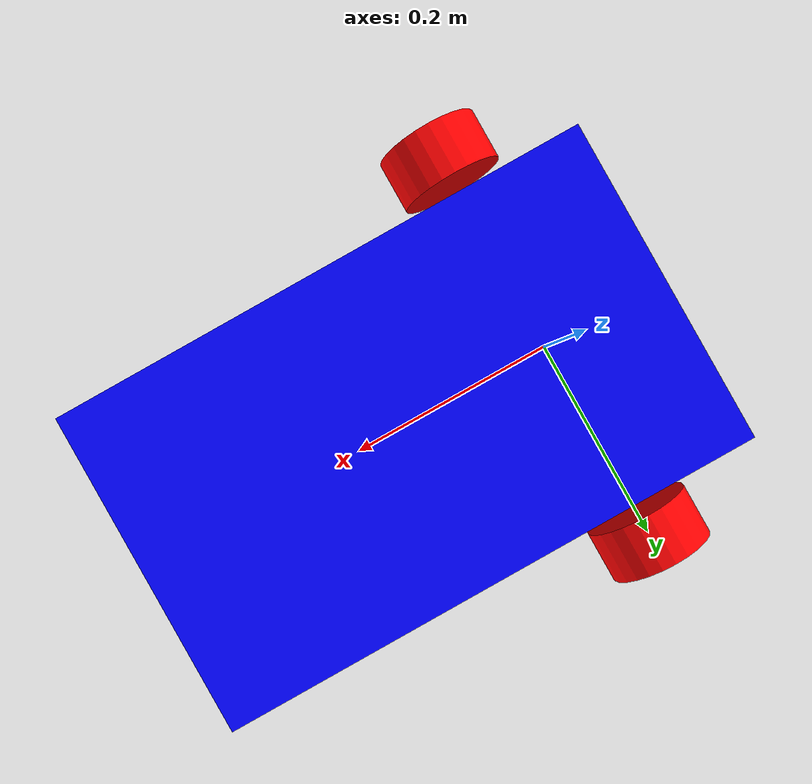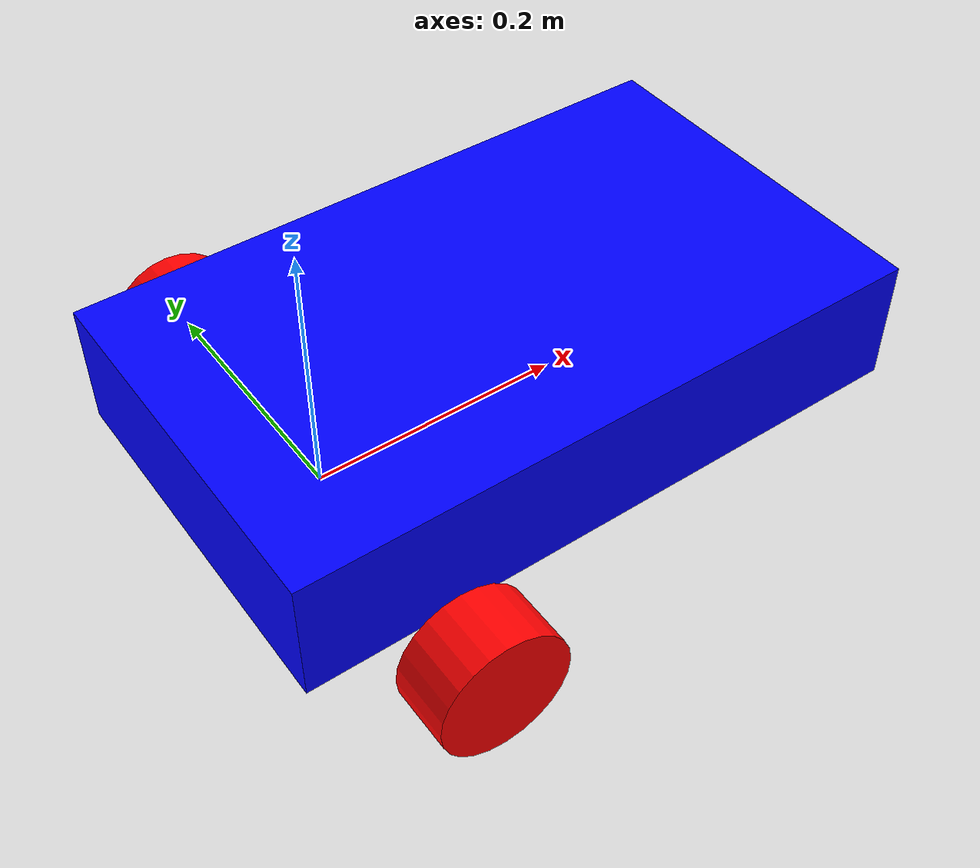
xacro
<?xml version = "1.0"?>

<robot xmlns:xacro="http://www.ros.org/wiki/xacro">
<gazebo>
  <plugin
    filename="libgz-sim-diff-drive-system.so"
    name="gz::sim::systems::DiffDrive">

        <!--Wheel information -->
        <left_joint>left_wheel_joint</left_joint>
        <right_joint>right_wheel_joint</right_joint>

        <wheel_separation>0.35</wheel_separation>
        <wheel_radius>0.05</wheel_radius>

        <!-- limits -->
        <max_wheel_torque>200</max_wheel_torque>
        <max_wheel_acceleration>10.0</max_wheel_acceleration>

        <frame_id>odom</frame_id>
        <child_frame_id>base_link</child_frame_id>
        <tf_topic>/tf</tf_topic>
        <odom_topic>/odom</odom_topic>

        <!-- outputs-->
        <robot_base_frame>base_link</robot_base_frame>

        <!-- topics-->
        <topic>cmd_vel</topic>
        <publish_odom>true</publish_odom>
        <publish_odom_tf>true</publish_odom_tf>
        <publish_wheel_tf>true</publish_wheel_tf>
  </plugin>
  <plugin
    filename="libgz-sim-joint-state-publisher-system.so"
    name="gz::sim::systems::JointStatePublisher">

    <topic>/joint_states</topic>

  </plugin>

</gazebo>
<gazebo reference="caster_wheel">
  <mu1 value="0.1"/>
  <mu2 value="0.1"/>
</gazebo>

<xacro:include filename="inertial_macros.xacro"/>

<!-- Base link -->
<link name = "base_link">

</link>

<joint name="base_footprint_joint" type="fixed">
  <parent link="base_link"/>
  <child link="base_footprint"/>
  <origin xyz="0 0 0" rpy="0 0 0"/>
</joint>

<link name="base_footprint">
</link>

<!--Chassis-->
<joint name = "chassis_joint" type = "fixed">
    <parent link = "base_link"/>
    <child link= "chassis"/>
    <origin xyz = "-0.1 0 0" rpy = "0 0 0"/>
</joint>

<link name = "chassis">
    <visual>
        <origin xyz = "0.25 0 0.05" rpy = "0 0 0"/>
        <geometry>
            <box size = "0.5 0.3 0.1"/>
        </geometry>
        <material name = "blue">
            <color rgba = "0 0 1 1"/>
        </material>
    </visual>
    <collision>
        <origin xyz = "0.25 0 0.05" rpy = "0 0 0"/>
        <geometry>
            <box size = "0.5 0.3 0.1"/>
        </geometry>
    </collision>
    <xacro:inertial_box mass="0.5" x="0.5" y="0.3" z="0.1">
        <origin xyz = "0.25 0 0.05"/>
    </xacro:inertial_box>

</link>

<!-- Left wheel -->
<joint name = "left_wheel_joint" type = "continuous">
    <parent link = "base_link"/>
    <child link = "left_wheel"/>
    <origin xyz = "0 0.2 0" rpy = "0 0 0"/>
    <axis xyz = "0 1 0"/>
</joint>

<link name = "left_wheel">
    <visual>
        <origin xyz = "0 0 0" rpy = "-1.5708 0 0"/>
        <geometry>
            <cylinder radius = "0.05" length = "0.05"/>
        </geometry>
        <material name = "red">
            <color rgba = "1 0 0 1"/>
        </material>
    </visual>
    <collision>
        <origin xyz = "0 0 0" rpy = "-1.5708 0 0"/>
        <geometry>
            <cylinder radius = "0.05" length = "0.05"/>
        </geometry>
    </collision>
    <xacro:inertial_cylinder mass = "0.1" length= "0.05" radius="0.05">
        <origin xyz = "0 0 0" rpy = "-1.5708 0 0"/>
    </xacro:inertial_cylinder>
</link>

<!-- right wheel -->
<joint name = "right_wheel_joint" type = "continuous">
    <parent link = "base_link"/>
    <child link = "right_wheel"/>
    <origin xyz = "0 -0.2 0" rpy = "0 0 0"/>
    <axis xyz = "0 1 0"/>
</joint>

<link name = "right_wheel">
    <visual>
        <origin xyz = "0 0 0" rpy = "-1.5708 0 0"/>
        <geometry>
            <cylinder radius = "0.05" length = "0.05"/>
        </geometry>
        <material name = "red"/>
    </visual>
    <collision>
        <origin xyz = "0 0 0" rpy = "-1.5708 0 0"/>
        <geometry>
            <cylinder radius = "0.05" length = "0.05"/>
        </geometry>
    </collision>
    <xacro:inertial_cylinder mass = "0.1" length= "0.05" radius="0.05">
        <origin xyz = "0 0 0" rpy = "-1.5708 0 0"/>
    </xacro:inertial_cylinder>
</link>

<joint name  = "casterwheel" type = "fixed">
    <parent link = "chassis"/>
    <child link = "caster_wheel"/>
    <origin xyz = "0.1 0 0" rpy = "0 0 0"/>
</joint>

<link name = "caster_wheel">
    <visual>
        <origin xyz = "0.3 0 0"/>
        <geometry>
            <sphere radius = "0.05"/>
        </geometry>
        <material name = "red">
            <color rgba = "1 0 0 1"/>
        </material>
    </visual>
    <collision>
        <origin xyz = "0.3 0 0"/>
        <geometry>
            <sphere radius = "0.05"/>
        </geometry>
    </collision>
    <xacro:inertial_sphere mass = "0.04" radius="0.05">
        <origin xyz ="0.3 0 0"/>
    </xacro:inertial_sphere>
</link>

</robot>
